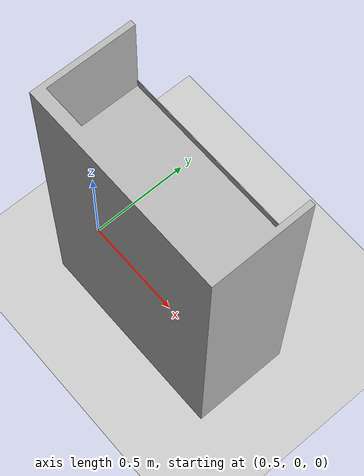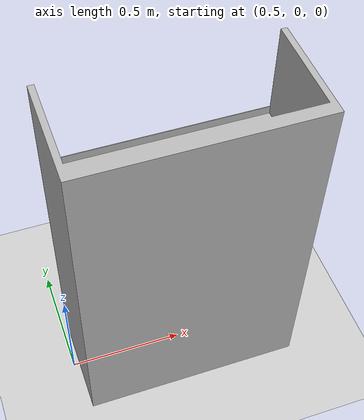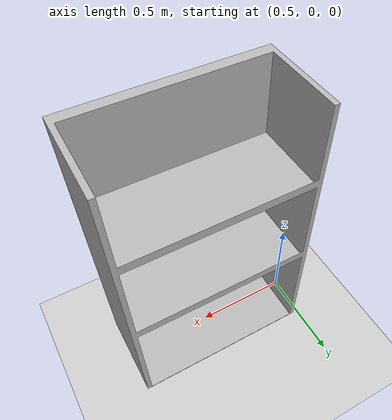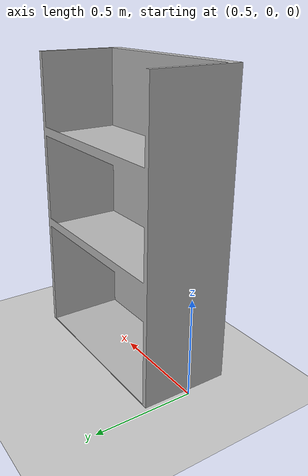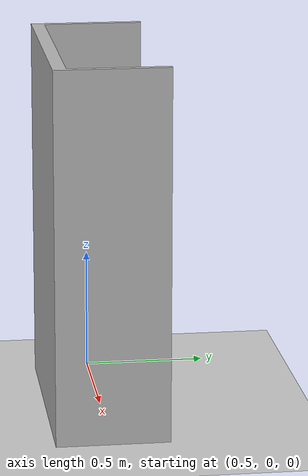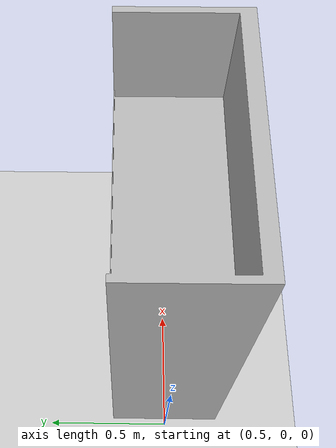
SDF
<sdf version="1.4">
 <world name="default">
  <light name="sun" type="directional">
   <pose>0 0 10 0 -0 0</pose>
   <diffuse>0.8 0.8 0.8 1</diffuse>
   <specular>0.2 0.2 0.2 1</specular>
   <attenuation>
    <range>1000</range>
    <constant>0.9</constant>
    <linear>0.01</linear>
    <quadratic>0.001</quadratic>
   </attenuation>
   <direction>-0.5 0.1 -0.9</direction>
  </light>
  <model name="ground_plane">
   <static>1</static>
   <link name="link">
    <collision name="collision">
     <geometry><plane><normal>0 0 1</normal><size>100 100</size></plane></geometry>
     <surface><friction><ode><mu>100</mu><mu2>50</mu2></ode></friction></surface>
    </collision>
    <visual name="visual">
     <cast_shadows>0</cast_shadows>
     <geometry><plane><normal>0 0 1</normal><size>100 100</size></plane></geometry>
     <material>
      <script><uri>file://media/materials/scripts/gazebo.material</uri><name>Gazebo/Grey</name></script>
     </material>
    </visual>
    <velocity_decay><linear>0</linear><angular>0</angular></velocity_decay>
   </link>
  </model>
  <physics type="ode">
   <max_step_size>0.001</max_step_size>
   <real_time_factor>1</real_time_factor>
   <real_time_update_rate>1000</real_time_update_rate>
   <gravity>0 0 -9.8</gravity>
  </physics>
  <scene><ambient>0.4 0.4 0.4 1</ambient><background>0.7 0.7 0.7 1</background><shadows>1</shadows></scene>
  <spherical_coordinates>
   <surface_model>EARTH_WGS84</surface_model>
   <latitude_deg>0</latitude_deg>
   <longitude_deg>0</longitude_deg>
   <elevation>0</elevation>
   <heading_deg>0</heading_deg>
  </spherical_coordinates>
  <model name="robot">
   <link name="shelf">
    <inertial>
     <mass>5</mass>
     <inertia><ixx>1</ixx><ixy>0</ixy><ixz>0</ixz><iyy>1</iyy><iyz>0</iyz><izz>1</izz></inertia>
    </inertial>
    <collision name="shelf_collision">
     <geometry>
      <mesh>
       <scale>1 1 1</scale>
       <uri>/home/kdel/workspace/ros/fcsc_ws/src/fcsc_description/mesh/shelf.stl</uri>
      </mesh>
     </geometry>
    </collision>
    <visual name="shelf_visual">
     <geometry>
      <mesh>
       <scale>1 1 1</scale>
       <uri>/home/kdel/workspace/ros/fcsc_ws/src/fcsc_description/mesh/shelf.stl</uri>
      </mesh>
     </geometry>
    </visual>
    <velocity_decay><linear>0</linear><angular>0</angular></velocity_decay>
   </link>
   <joint name="fix" type="revolute">
    <child>shelf</child>
    <parent>world</parent>
    <axis>
     <limit><lower>0</lower><upper>0</upper></limit>
     <dynamics><damping>0</damping></dynamics>
     <xyz>0 0 1</xyz>
    </axis>
   </joint>
   <pose>1 0 0 0 0 -1.57</pose>
   <static>0</static>
  </model>
 </world>
</sdf>
